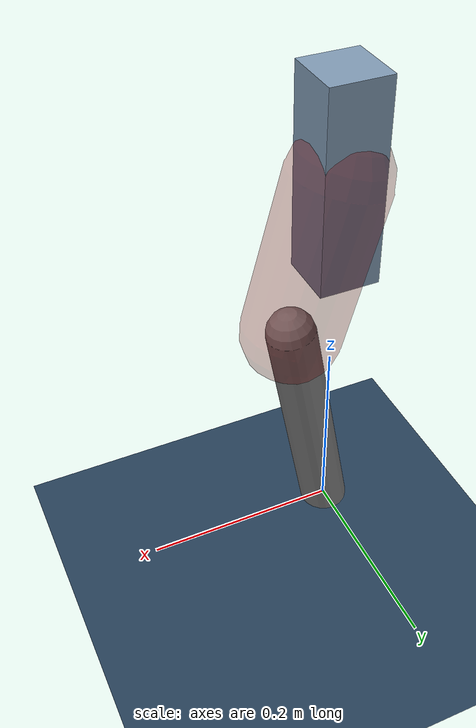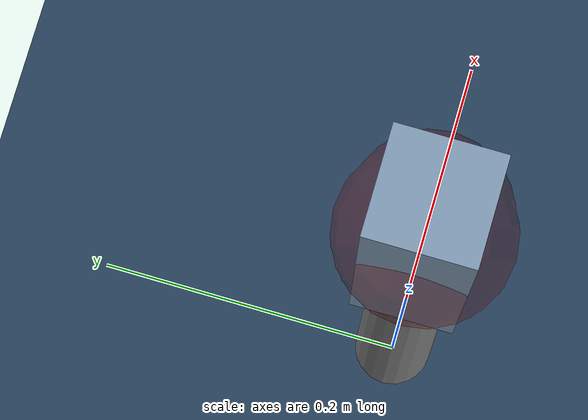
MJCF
<mujoco model="Hopper2D">
	<compiler inertiafromgeom="true" angle="radian" />
	<option timestep="0.001" integrator="implicit" cone="elliptic" solver="Newton" tolerance="1e-10" />

	<default>
		<geom contype="1" conaffinity="1" condim="3" friction="2 0.005 0.0001" solref="0.005 1" />
		<joint limited="true" damping="0.1" />
	</default>

	<asset>
		<texture name="skybox" type="skybox" builtin="gradient" rgb1=".4 .6 .8" rgb2="0 0 0" width="800" height="800" />
		<texture name="grid" type="2d" builtin="checker" rgb1=".1 .2 .3" rgb2=".2 .3 .4" width="300" height="300" mark="edge" markrgb=".2 .3 .4" />
		<material name="ground" texture="grid" texrepeat="1 1" texuniform="true" reflectance="0.1" />
		<material name="leg" rgba="0.5 0.6 0.7 1" />
	</asset>

	<worldbody>

		<geom name="floor" type="plane" size="5 5 0.25" material="ground" />

		<light directional="false" diffuse="0.8 0.8 0.8" specular="0.3 0.3 0.3" pos="0 0 2" dir="0 0 -1" />
		<light mode="targetbodycom" target="base" directional="false" diffuse="0.8 0.8 0.8" specular="0.3 0.3 0.3" pos="0 0 2" dir="0 0 -1" />

		<camera name="fixed" pos="0 -2 1" xyaxes="1 0 0 0 0 1" />
		<camera name="tracking" mode="trackcom" pos="0 -3 1" />

		<body name="root" pos="0 0 0.4026645122085147">
			<joint name="slide_x" type="slide" axis="1 0 0" range="-100 100" />
			<joint name="slide_z" type="slide" axis="0 0 1" range="0 10" />

			<body name="base" pos="0 0 0">
				<geom name="torso" type="box" size="0.03 0.03 0.1" mass="3.143" material="leg" />

				<body name="link1" pos="0 0 0" euler="0 1.2961399473273794 0">
					<joint type="hinge" axis="0 -1 0" pos="0 0 0" name="hinge1" limited="true" range="-3.14 3.14" stiffness="0" damping="0.1" />
					<geom name="thigh" type="capsule" fromto="0 0 0 0.16246474975127156 0 0" size="0.05" rgba="0.5 0 0 0.3" mass="0.6382153994030517" />

					<body name="link2" pos="0.16246474975127156 0 0" euler="0 0.4516912573908429 0">
						<joint type="hinge" axis="0 -1 0" pos="0 0 0" name="hinge2" limited="true" range="-3.14 3.14" stiffness="0" damping="0.1" />
						<geom name="shank" type="capsule" fromto="0 0 0 0.2501997624572431 0 0" size="0.025" mass="0.4426598099657945" />

					</body>
				</body>
			</body>
		</body>
	</worldbody>

	<actuator>
		<motor name="torque1" joint="hinge1" ctrlrange="-47.79724518942242 47.79724518942242" ctrllimited="true" gear="1" />
		<motor name="torque2" joint="hinge2" ctrlrange="-166.4155091758792 166.4155091758792" ctrllimited="true" gear="1" />
	</actuator>
</mujoco>
